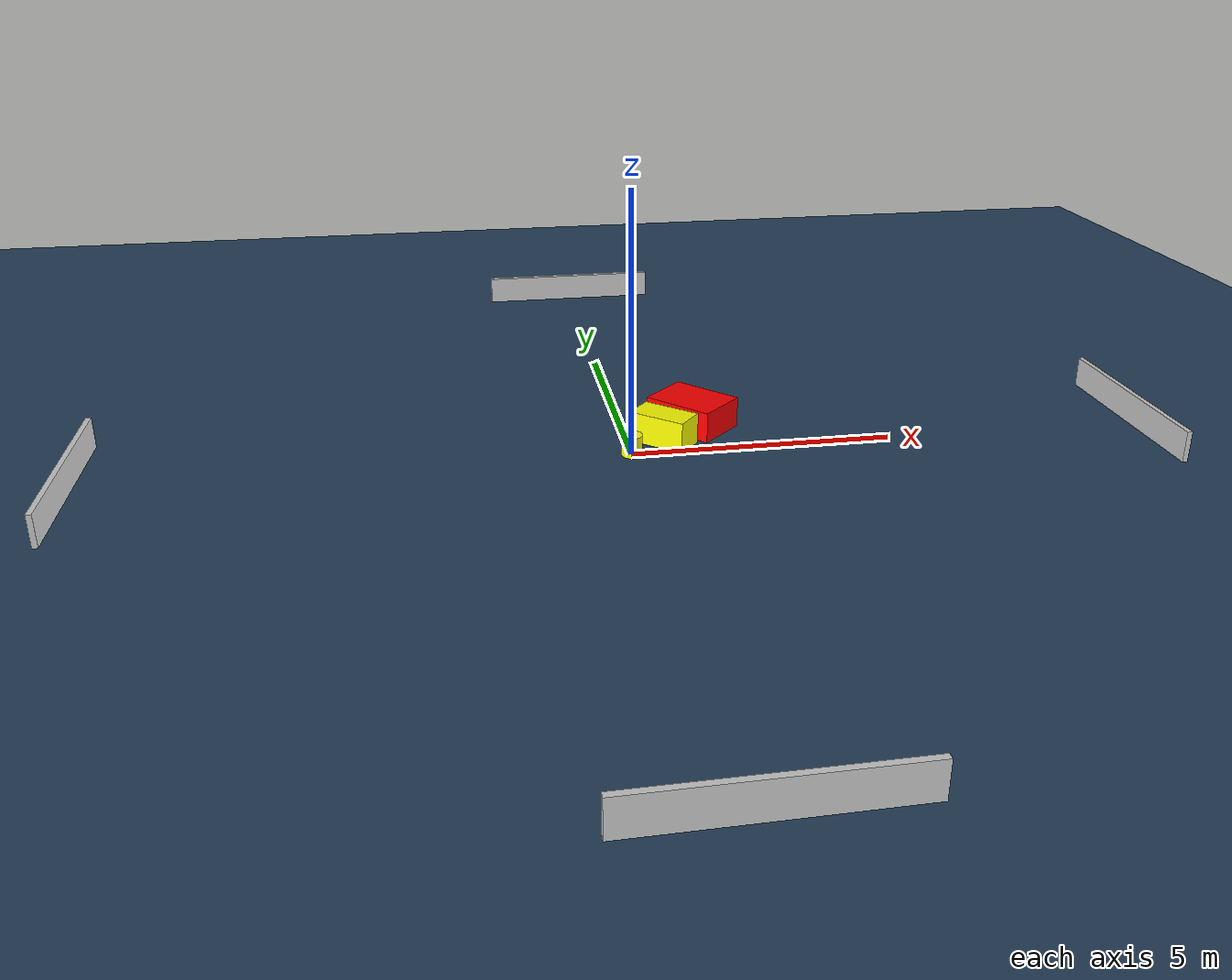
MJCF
<?xml version="1.0" ?>
<mujoco model="generated_environment">
  <option timestep="0.01" integrator="RK4" cone="elliptic"/>
  <default>
    <geom density="1"/>
  </default>
  <asset>
    <texture builtin="gradient" height="3072" name="skybox" rgb1="0.3 0.5 0.7" rgb2="0 0 0" type="skybox" width="512"/>
    <texture builtin="checker" height="300" name="groundplane" rgb1="0.2 0.3 0.4" rgb2="0.1 0.2 0.3" type="2d" width="300"/>
    <material name="groundplane" reflectance="0.2" texrepeat="5 5" texture="groundplane"/>
  </asset>
  <worldbody>
    <light dir="0 0 -1" directional="true" pos="0 0 1.5"/>
    <geom condim="3" friction="0.5 0.005 0.001" material="groundplane" name="floor" pos="0 0 0" size="0 0 0.05" type="plane"/>
    <body name="walls">
      <geom name="wall_1" condim="4" pos="-10.0 0.0 0.3" rgba="0.800000011920929 0.800000011920929 0.800000011920929 1.0" size="0.05 2.0 0.3" type="box"/>
      <geom name="wall_2" condim="4" pos="10.0 0.0 0.3" rgba="0.800000011920929 0.800000011920929 0.800000011920929 1.0" size="0.05 2.0 0.3" type="box"/>
      <geom name="wall_3" condim="4" pos="0.0 -10.0 0.3" rgba="0.800000011920929 0.800000011920929 0.800000011920929 1.0" size="2.0 0.05 0.3" type="box"/>
      <geom name="wall_4" condim="4" pos="0.0 10.0 0.3" rgba="0.800000011920929 0.800000011920929 0.800000011920929 1.0" size="2.0 0.05 0.3" type="box"/>
    </body>
    <body name="robot">
      <joint name="joint_x" type="slide" pos="0 0 0" axis="1 0 0"/>
      <joint name="joint_y" type="slide" pos="0 0 0" axis="0 1 0"/>
      <geom name="robot" type="cylinder" pos="0.0 0.0 0.2" size="0.2 0.2 0.0" mass="5.0" friction="1.0 0.005 0.0001" condim="4" rgba="1.0 1.0 0.0 1.0"/>
    </body>
    <body name="obstacle_1_movable">
      <geom name="obstacle_1_movable" condim="4" pos="0.694194723546517 0.48476159086759046 0.3" euler="0 0 138.832689520668" friction="0.0 0.005 0.001" rgba="1.0 1.0 0.0 1.0" size="0.5702262530191111 0.3010195503232634 0.3" type="box" mass="0.1"/>
      <joint type="free"/>
    </body>
    <body name="obstacle_2_static">
      <geom name="obstacle_2_static" condim="4" pos="1.3902424054463238 1.1596356165290322 0.3" euler="0 0 223.3405566322885" friction="0.0 0.005 0.001" rgba="1.0 0.0 0.0 1.0" size="0.5253463084344099 0.7068327500482063 0.3" type="box"/>
    </body>
  </worldbody>
  <actuator>
    <motor name="actuator_x" joint="joint_x" gear="1" ctrlrange="-1 1"/>
    <motor name="actuator_y" joint="joint_y" gear="1" ctrlrange="-1 1"/>
  </actuator>
</mujoco>
